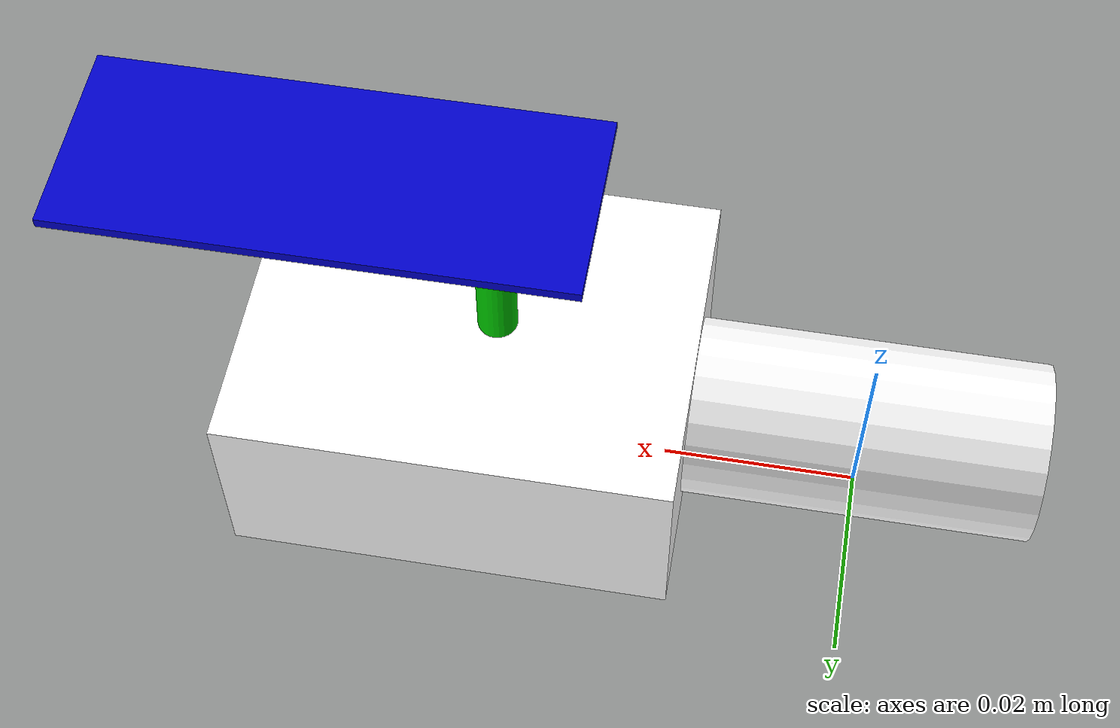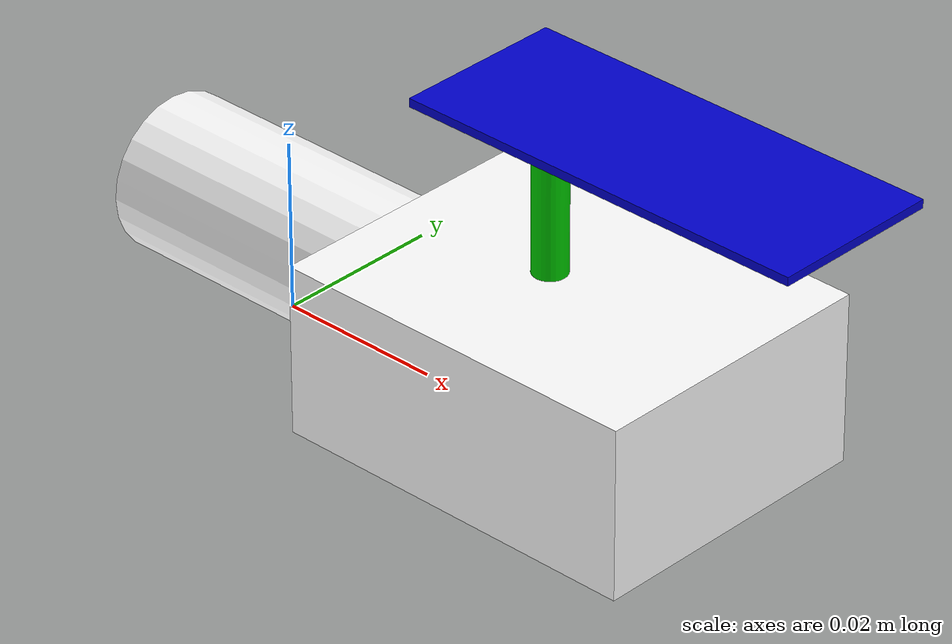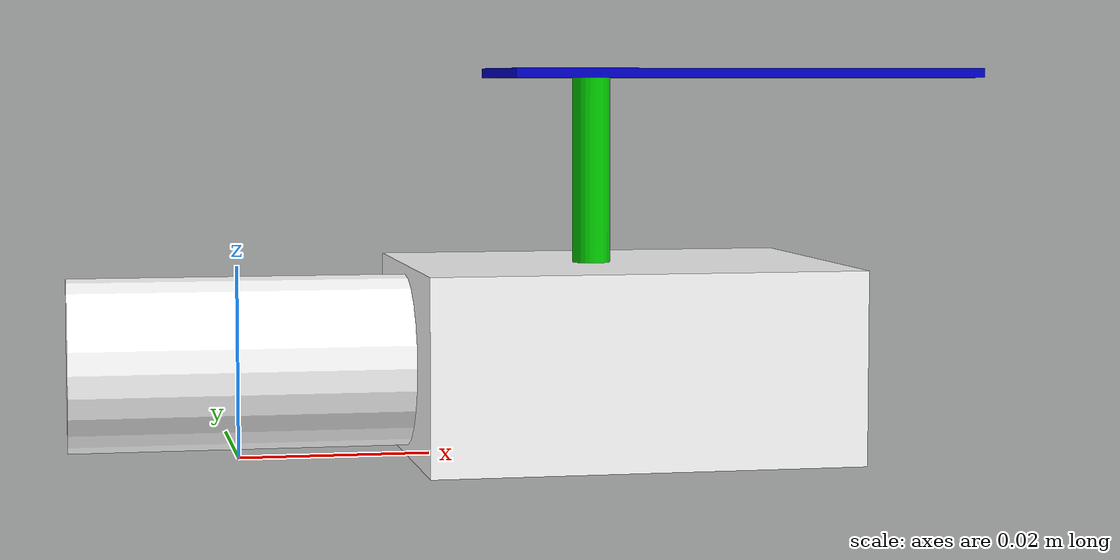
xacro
<?xml version="1.0"?>
<robot name="single_joint_actuator" xmlns:xacro="http://ros.org/wiki/xacro">
   <material name="blue">
	  <color rgba="0 0 0.8 1"/>
   </material>

   <material name="green">
      <color rgba="0.0 0.8 0.0 1.0"/>
   </material>

   <material name="white">
	<color rgba="1 1 1 1"/>
   </material>

  <link name="world">

   </link>

   <joint name="base" type="fixed">
     <origin rpy="0 0 0" xyz="0 0 0"/>
     <parent link="world"/>
     <child link="motor"/>
   </joint>

   <link name="motor">
   <visual>
      <geometry>
          <cylinder length="0.035" radius="0.009"/>
      </geometry>
      <material name="white"/>
      <origin rpy="0 1.5708 0" xyz="0 0 0.01"/>
    </visual>
   </link>

   <joint name="fixed_joint" type="fixed">
     <origin rpy="0 0 0" xyz="0.0175 0 0.01"/>
     <parent link="motor"/>
     <child link="motor_gear_box"/>
   </joint>

  <link name="motor_gear_box">
   <visual>
      <geometry>
         <box size="0.045 0.035 0.02"/>
      </geometry>
      <material name="white"/>
      <origin rpy="0 0 0" xyz="0.0225 0 0"/>
    </visual>
   </link>

   <joint name="joint1" type="revolute">
     <axis xyz="0 0 1"/>
     <origin rpy="0 0 0" xyz="0.02 0 0.01"/>
     <parent link="motor_gear_box"/>
     <child link="shaft"/>
     <limit
      lower="-3.14"
      upper="3.14"
      effort="0"
      velocity="0" />
   </joint>

   <link name="shaft">
   <visual>
      <geometry>
         <cylinder length="0.02" radius="0.002"/>
      </geometry>
      <material name="green"/>
      <origin rpy="0 0 0" xyz="0 0 0.01"/>
    </visual>
   </link>

   <joint name="shaft_joint" type="fixed">
     <origin rpy="0 0 0" xyz="0.0 0 0.02"/>
     <parent link="shaft"/>
     <child link="shaft_bar"/>
   </joint>

   <link name="shaft_bar">
   <visual>
      <geometry>
         <box size="0.05 0.02 0.001"/>
      </geometry>
      <material name="blue"/>
      <origin rpy="0 0 0" xyz="0.015 0 0"/>
    </visual>
   </link>

 </robot>
